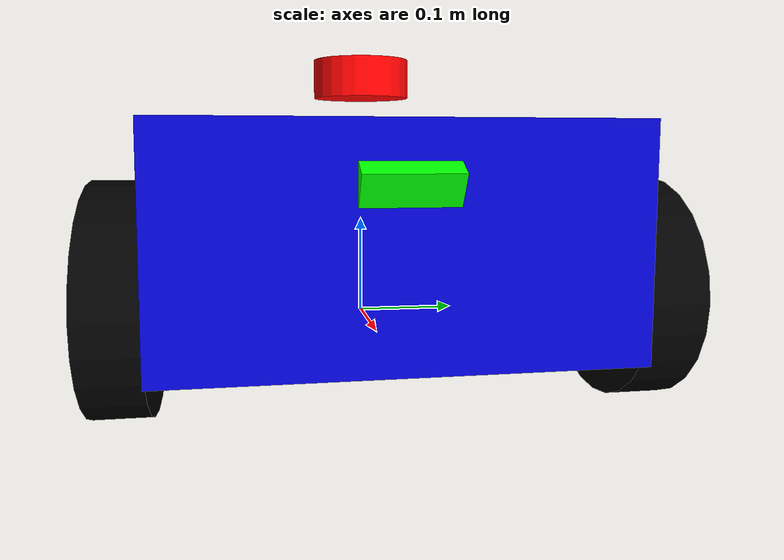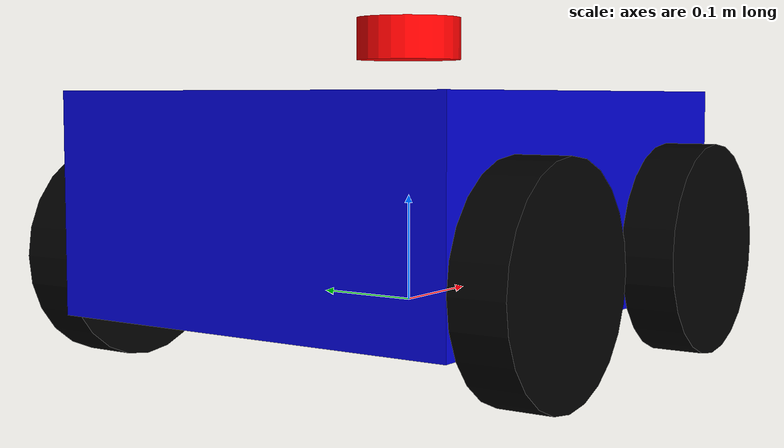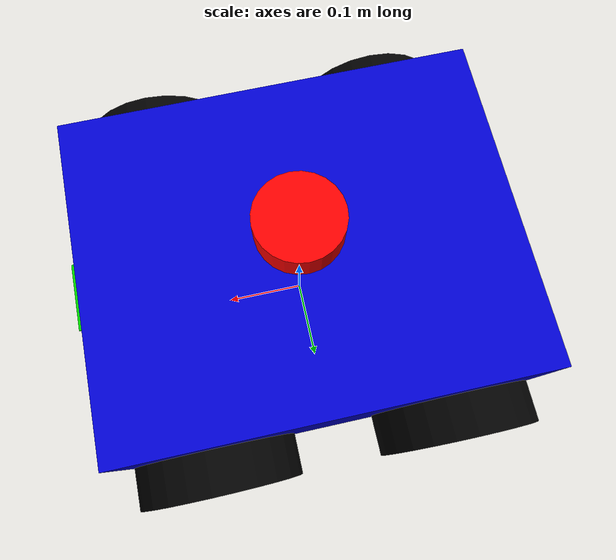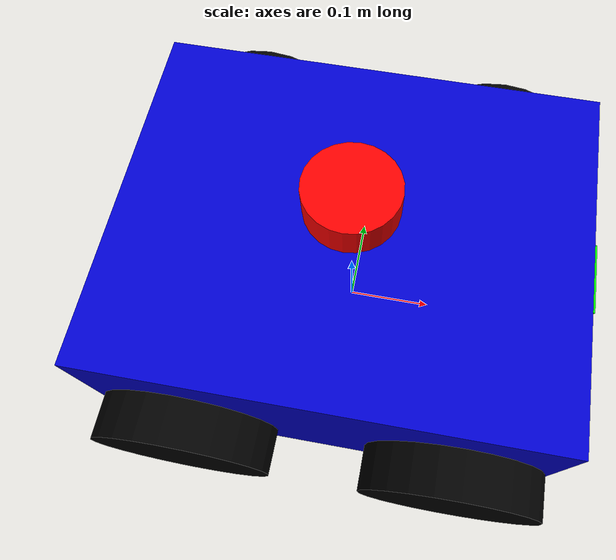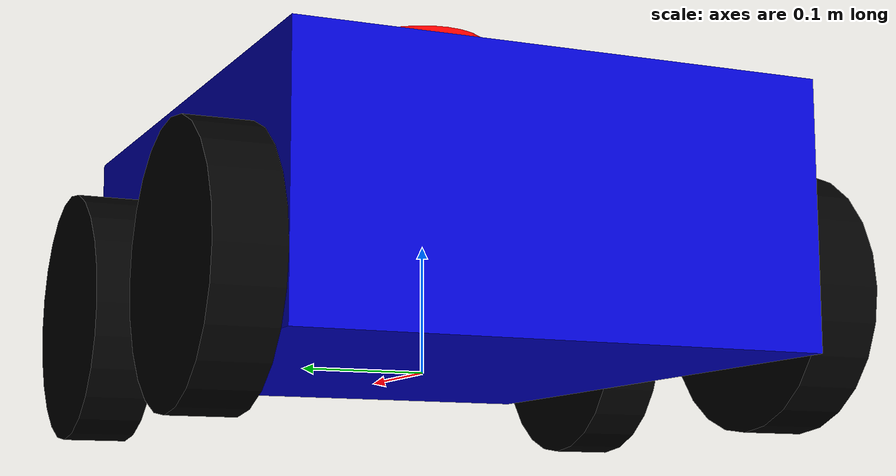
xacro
<?xml version="1.0"?>
<robot name="terrain_robot" xmlns:xacro="http://www.ros.org/wiki/xacro">

  <!-- Base footprint -->
  <link name="base_footprint"/>

  <!-- Base link (chassis) -->
  <link name="base_link">
    <visual>
      <geometry>
        <box size="0.5 0.4 0.2"/>
      </geometry>
      <material name="blue">
        <color rgba="0 0 0.8 1"/>
      </material>
    </visual>
    <collision>
      <geometry>
        <box size="0.5 0.4 0.2"/>
      </geometry>
    </collision>
    <inertial>
      <mass value="10.0"/>
      <inertia ixx="0.1" ixy="0.0" ixz="0.0" iyy="0.1" iyz="0.0" izz="0.1"/>
    </inertial>
  </link>

  <joint name="base_joint" type="fixed">
    <parent link="base_footprint"/>
    <child link="base_link"/>
    <origin xyz="0 0 0.1" rpy="0 0 0"/>
  </joint>

  <gazebo reference="base_link">
    <material>Gazebo/Blue</material>
  </gazebo>

  <!-- Wheels (simplified) -->
  <xacro:macro name="wheel" params="prefix x y">
    <link name="${prefix}_wheel">
      <visual>
        <geometry>
          <cylinder radius="0.1" length="0.05"/>
        </geometry>
        <material name="black">
          <color rgba="0 0 0 1"/>
        </material>
      </visual>
      <collision>
        <geometry>
          <cylinder radius="0.1" length="0.05"/>
        </geometry>
      </collision>
      <inertial>
        <mass value="1.0"/>
        <inertia ixx="0.01" ixy="0.0" ixz="0.0" iyy="0.01" iyz="0.0" izz="0.01"/>
      </inertial>
    </link>

    <joint name="${prefix}_wheel_joint" type="continuous">
      <parent link="base_link"/>
      <child link="${prefix}_wheel"/>
      <origin xyz="${x} ${y} -0.05" rpy="-1.5708 0 0"/>
      <axis xyz="0 0 1"/>
    </joint>

    <gazebo reference="${prefix}_wheel">
      <material>Gazebo/Black</material>
    </gazebo>
  </xacro:macro>

  <xacro:wheel prefix="left_front" x="0.15" y="0.225"/>
  <xacro:wheel prefix="right_front" x="0.15" y="-0.225"/>
  <xacro:wheel prefix="left_rear" x="-0.15" y="0.225"/>
  <xacro:wheel prefix="right_rear" x="-0.15" y="-0.225"/>

  <!-- LiDAR LINK -->
  <link name="lidar_link">
    <visual>
      <geometry>
        <cylinder radius="0.05" length="0.04"/>
      </geometry>
      <material name="red">
        <color rgba="1 0 0 1"/>
      </material>
    </visual>
    <collision>
      <geometry>
        <cylinder radius="0.05" length="0.04"/>
      </geometry>
    </collision>
    <inertial>
      <mass value="0.1"/>
      <inertia ixx="0.001" ixy="0.0" ixz="0.0" iyy="0.001" iyz="0.0" izz="0.001"/>
    </inertial>
  </link>

  <joint name="lidar_joint" type="fixed">
    <parent link="base_link"/>
    <child link="lidar_link"/>
    <origin xyz="0 0 0.15" rpy="0 0 0"/>
  </joint>

  <!-- LIDAR GAZEBO SENSOR - INSIDE GAZEBO TAG -->
  <gazebo reference="lidar_link">
    <material>Gazebo/Red</material>
    <sensor name="lidar_sensor" type="gpu_lidar">
      <pose>0 0 0 0 0 0</pose>
      <topic>lidar</topic>
      <update_rate>10</update_rate>
      <lidar>
        <scan>
          <horizontal>
            <samples>360</samples>
            <resolution>1</resolution>
            <min_angle>-3.14159</min_angle>
            <max_angle>3.14159</max_angle>
          </horizontal>
        </scan>
        <range>
          <min>0.1</min>
          <max>30.0</max>
          <resolution>0.01</resolution>
        </range>
        <noise>
          <type>gaussian</type>
          <mean>0.0</mean>
          <stddev>0.01</stddev>
        </noise>
      </lidar>
      <always_on>1</always_on>
      <visualize>true</visualize>
    </sensor>
  </gazebo>

  <!-- Tilted Depth Camera LINK -->
  <link name="camera_link">
    <visual>
      <geometry>
        <box size="0.02 0.08 0.03"/>
      </geometry>
      <material name="green">
        <color rgba="0 1 0 1"/>
      </material>
    </visual>
    <collision>
      <geometry>
        <box size="0.02 0.08 0.03"/>
      </geometry>
    </collision>
    <inertial>
      <mass value="0.05"/>
      <inertia ixx="0.001" ixy="0.0" ixz="0.0" iyy="0.001" iyz="0.0" izz="0.001"/>
    </inertial>
  </link>

  <!-- Tilted 30 degrees downward (rpy="0 0.523 0" = 30 degrees) -->
  <joint name="camera_joint" type="fixed">
    <parent link="base_link"/>
    <child link="camera_link"/>
    <origin xyz="0.25 0 0.05" rpy="0 0.523 0"/>
  </joint>

  <link name="camera_depth_frame"/>

  <joint name="camera_depth_joint" type="fixed">
    <parent link="camera_link"/>
    <child link="camera_depth_frame"/>
    <origin xyz="0 0 0" rpy="-1.5708 0 -1.5708"/>
  </joint>

  <!-- DEPTH CAMERA GAZEBO SENSOR - INSIDE GAZEBO TAG -->
  <gazebo reference="camera_link">
    <material>Gazebo/Green</material>
    <sensor name="depth_camera" type="depth_camera">
      <pose>0 0 0 0 0 0</pose>
      <update_rate>20</update_rate>
      <topic>depth_camera</topic>
      <camera>
        <horizontal_fov>1.396</horizontal_fov>
        <image>
          <width>640</width>
          <height>480</height>
          <format>R8G8B8</format>
        </image>
        <clip>
          <near>0.1</near>
          <far>10.0</far>
        </clip>
        <noise>
          <type>gaussian</type>
          <mean>0.0</mean>
          <stddev>0.007</stddev>
        </noise>
      </camera>
      <always_on>1</always_on>
      <visualize>true</visualize>
    </sensor>
  </gazebo>

  <!-- Differential Drive Plugin -->
  <gazebo>
    <plugin filename="gz-sim-diff-drive-system" name="gz::sim::systems::DiffDrive">
      <left_joint>left_front_wheel_joint</left_joint>
      <left_joint>left_rear_wheel_joint</left_joint>
      <right_joint>right_front_wheel_joint</right_joint>
      <right_joint>right_rear_wheel_joint</right_joint>
      <wheel_separation>0.45</wheel_separation>
      <wheel_radius>0.1</wheel_radius>
      <odom_publish_frequency>10</odom_publish_frequency>
      <topic>cmd_vel</topic>
    </plugin>
  </gazebo>

</robot>
